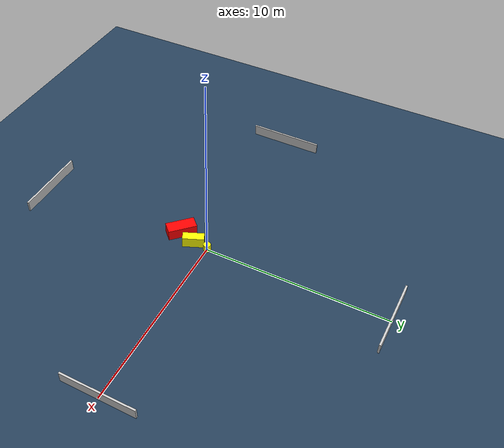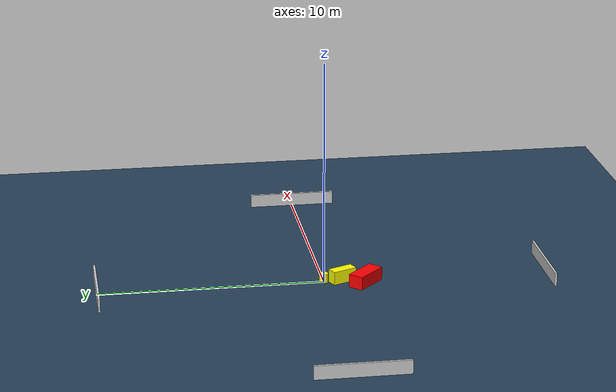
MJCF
<?xml version="1.0" ?>
<mujoco model="generated_environment">
  <option timestep="0.01" integrator="RK4" cone="elliptic"/>
  <default>
    <geom density="1"/>
  </default>
  <asset>
    <texture builtin="gradient" height="3072" name="skybox" rgb1="0.3 0.5 0.7" rgb2="0 0 0" type="skybox" width="512"/>
    <texture builtin="checker" height="300" name="groundplane" rgb1="0.2 0.3 0.4" rgb2="0.1 0.2 0.3" type="2d" width="300"/>
    <material name="groundplane" reflectance="0.2" texrepeat="5 5" texture="groundplane"/>
  </asset>
  <worldbody>
    <light dir="0 0 -1" directional="true" pos="0 0 1.5"/>
    <geom condim="3" friction="0.5 0.005 0.001" material="groundplane" name="floor" pos="0 0 0" size="0 0 0.05" type="plane"/>
    <body name="walls">
      <geom name="wall_1" condim="4" pos="-10.0 0.0 0.3" rgba="0.800000011920929 0.800000011920929 0.800000011920929 1.0" size="0.05 2.0 0.3" type="box"/>
      <geom name="wall_2" condim="4" pos="10.0 0.0 0.3" rgba="0.800000011920929 0.800000011920929 0.800000011920929 1.0" size="0.05 2.0 0.3" type="box"/>
      <geom name="wall_3" condim="4" pos="0.0 -10.0 0.3" rgba="0.800000011920929 0.800000011920929 0.800000011920929 1.0" size="2.0 0.05 0.3" type="box"/>
      <geom name="wall_4" condim="4" pos="0.0 10.0 0.3" rgba="0.800000011920929 0.800000011920929 0.800000011920929 1.0" size="2.0 0.05 0.3" type="box"/>
    </body>
    <body name="robot">
      <joint name="joint_x" type="slide" pos="0 0 0" axis="1 0 0"/>
      <joint name="joint_y" type="slide" pos="0 0 0" axis="0 1 0"/>
      <geom name="robot" type="cylinder" pos="0.0 0.0 0.2" size="0.2 0.2 0.0" mass="5.0" friction="1.0 0.005 0.0001" condim="4" rgba="1.0 1.0 0.0 1.0"/>
    </body>
    <body name="obstacle_1_movable">
      <geom name="obstacle_1_movable" condim="4" pos="-0.03322648166993795 -0.8251374082893765 0.3" euler="0 0 293.51310871518353" friction="0.0 0.005 0.001" rgba="1.0 1.0 0.0 1.0" size="0.5724604139848641 0.2344013140473925 0.3" type="box" mass="0.1"/>
      <joint type="free"/>
    </body>
    <body name="obstacle_2_static">
      <geom name="obstacle_2_static" condim="4" pos="-0.44988096079000073 -1.7926965051835622 0.3" euler="0 0 135.33768491353925" friction="0.0 0.005 0.001" rgba="1.0 0.0 0.0 1.0" size="0.7771293008189935 0.3396998054364728 0.3" type="box"/>
    </body>
  </worldbody>
  <actuator>
    <motor name="actuator_x" joint="joint_x" gear="1" ctrlrange="-1 1"/>
    <motor name="actuator_y" joint="joint_y" gear="1" ctrlrange="-1 1"/>
  </actuator>
</mujoco>
